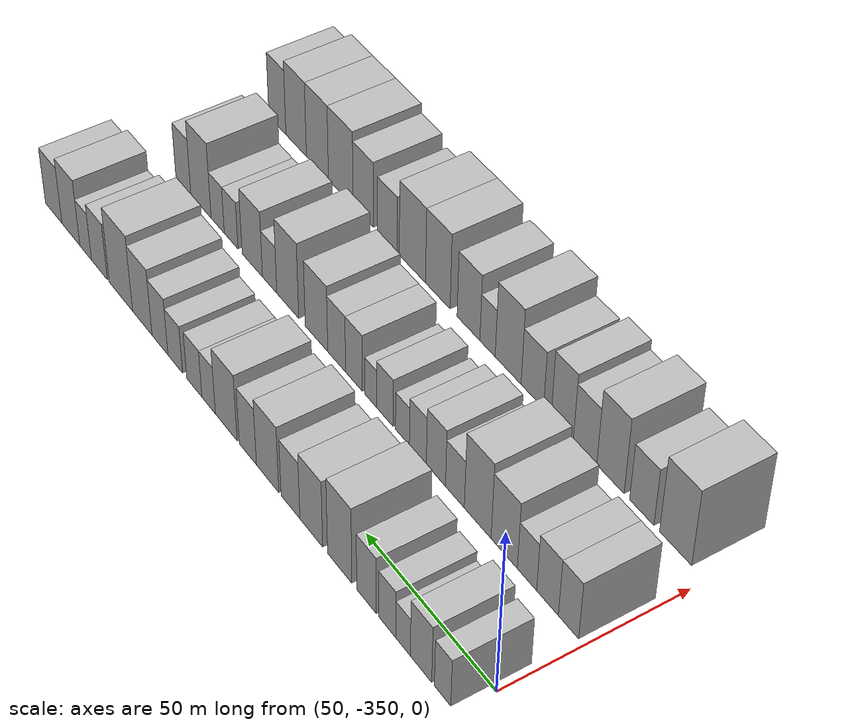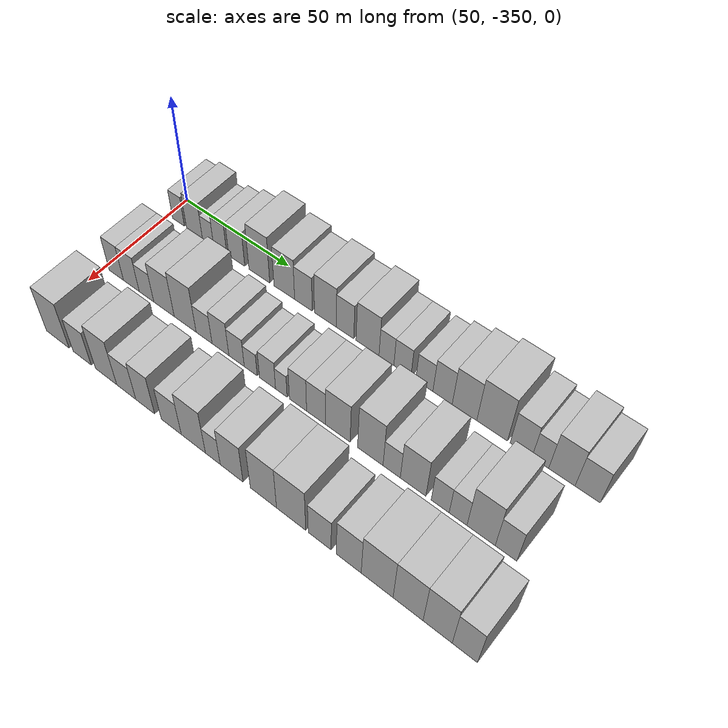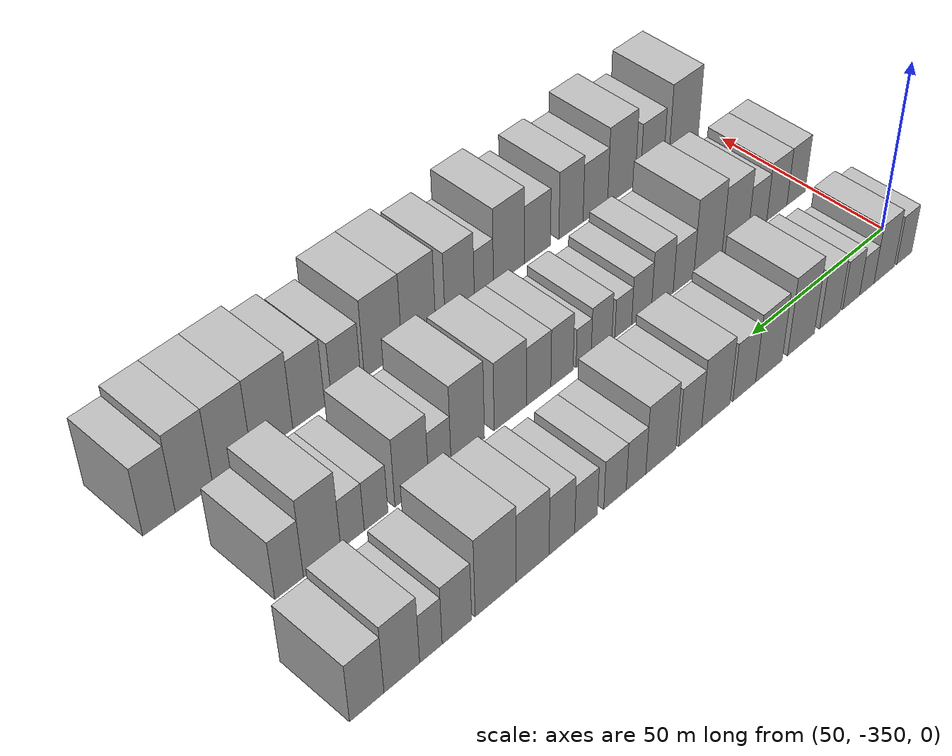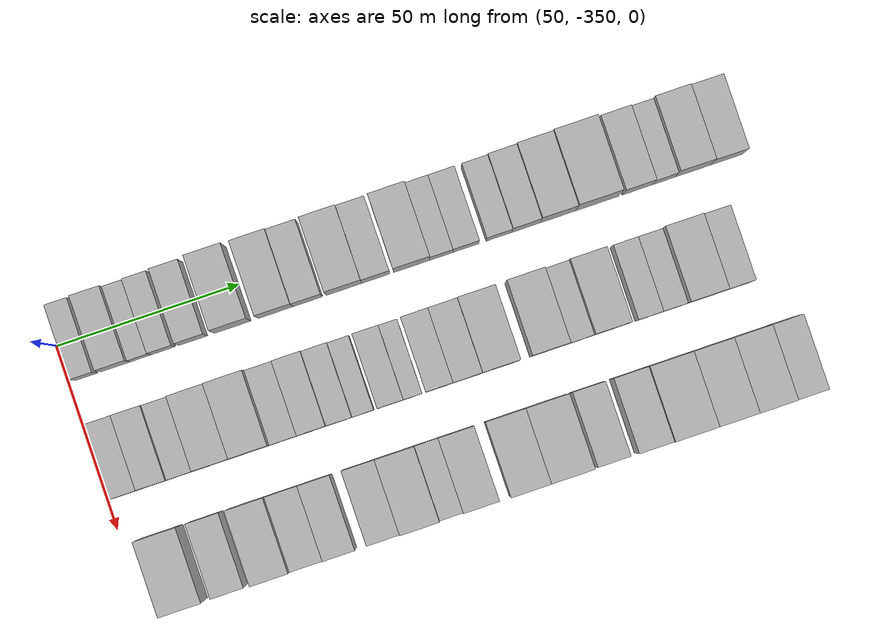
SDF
<sdf version="1.6">
 <world name="default">
  <model name="building_1">
   <static>1</static>
   <pose>50.0000 -344.9657 0 0.000000 0.000000 0.000000</pose>
   <link name="link">
    <pose>0 0 7.50 0 0 0</pose>
    <collision name="collision"><geometry><box><size>20.0000 6.0687 15.0000</size></box></geometry></collision>
    <visual name="visual">
     <cast_shadows>0</cast_shadows>
     <geometry><box><size>20.0000 6.0687 15.0000</size></box></geometry>
     <material>
      <script>
       <uri>model://HANNAS_wall/materials/scripts</uri>
       <uri>model://HANNAS_wall/materials/textures</uri>
       <name>vrc/HANNAS_wall</name>
      </script>
     </material>
    </visual>
   </link>
  </model>
  <model name="building_2">
   <static>1</static>
   <pose>50.0000 -336.9161 0 0.000000 0.000000 0.000000</pose>
   <link name="link">
    <pose>0 0 9.00 0 0 0</pose>
    <collision name="collision"><geometry><box><size>20.0000 8.0305 18.0000</size></box></geometry></collision>
    <visual name="visual">
     <cast_shadows>0</cast_shadows>
     <geometry><box><size>20.0000 8.0305 18.0000</size></box></geometry>
     <material>
      <script>
       <uri>model://HANNAS_wall/materials/scripts</uri>
       <uri>model://HANNAS_wall/materials/textures</uri>
       <name>vrc/HANNAS_wall</name>
      </script>
     </material>
    </visual>
   </link>
  </model>
  <model name="building_3">
   <static>1</static>
   <pose>50.0000 -330.0949 0 0.000000 0.000000 0.000000</pose>
   <link name="link">
    <pose>0 0 6.00 0 0 0</pose>
    <collision name="collision"><geometry><box><size>20.0000 5.6119 12.0000</size></box></geometry></collision>
    <visual name="visual">
     <cast_shadows>0</cast_shadows>
     <geometry><box><size>20.0000 5.6119 12.0000</size></box></geometry>
     <material>
      <script>
       <uri>model://HANNAS_wall/materials/scripts</uri>
       <uri>model://HANNAS_wall/materials/textures</uri>
       <name>vrc/HANNAS_wall</name>
      </script>
     </material>
    </visual>
   </link>
  </model>
  <model name="building_4">
   <static>1</static>
   <pose>50.0000 -324.0263 0 0.000000 0.000000 0.000000</pose>
   <link name="link">
    <pose>0 0 7.50 0 0 0</pose>
    <collision name="collision"><geometry><box><size>20.0000 6.5253 15.0000</size></box></geometry></collision>
    <visual name="visual">
     <cast_shadows>0</cast_shadows>
     <geometry><box><size>20.0000 6.5253 15.0000</size></box></geometry>
     <material>
      <script>
       <uri>model://HANNAS_wall/materials/scripts</uri>
       <uri>model://HANNAS_wall/materials/textures</uri>
       <name>vrc/HANNAS_wall</name>
      </script>
     </material>
    </visual>
   </link>
  </model>
  <model name="building_5">
   <static>1</static>
   <pose>50.0000 -315.8973 0 0.000000 0.000000 0.000000</pose>
   <link name="link">
    <pose>0 0 9.00 0 0 0</pose>
    <collision name="collision"><geometry><box><size>20.0000 7.7328 18.0000</size></box></geometry></collision>
    <visual name="visual">
     <cast_shadows>0</cast_shadows>
     <geometry><box><size>20.0000 7.7328 18.0000</size></box></geometry>
     <material>
      <script>
       <uri>model://HANNAS_wall/materials/scripts</uri>
       <uri>model://HANNAS_wall/materials/textures</uri>
       <name>vrc/HANNAS_wall</name>
      </script>
     </material>
    </visual>
   </link>
  </model>
  <model name="building_6">
   <static>1</static>
   <pose>50.0000 -305.1037 0 0.000000 0.000000 0.000000</pose>
   <link name="link">
    <pose>0 0 12.00 0 0 0</pose>
    <collision name="collision"><geometry><box><size>20.0000 9.8543 24.0000</size></box></geometry></collision>
    <visual name="visual">
     <cast_shadows>0</cast_shadows>
     <geometry><box><size>20.0000 9.8543 24.0000</size></box></geometry>
     <material>
      <script>
       <uri>model://HANNAS_wall/materials/scripts</uri>
       <uri>model://HANNAS_wall/materials/textures</uri>
       <name>vrc/HANNAS_wall</name>
      </script>
     </material>
    </visual>
   </link>
  </model>
  <model name="building_7">
   <static>1</static>
   <pose>50.0000 -293.4159 0 0.000000 0.000000 0.000000</pose>
   <link name="link">
    <pose>0 0 10.50 0 0 0</pose>
    <collision name="collision"><geometry><box><size>20.0000 9.5214 21.0000</size></box></geometry></collision>
    <visual name="visual">
     <cast_shadows>0</cast_shadows>
     <geometry><box><size>20.0000 9.5214 21.0000</size></box></geometry>
     <material>
      <script>
       <uri>model://HANNAS_wall/materials/scripts</uri>
       <uri>model://HANNAS_wall/materials/textures</uri>
       <name>vrc/HANNAS_wall</name>
      </script>
     </material>
    </visual>
   </link>
  </model>
  <model name="building_8">
   <static>1</static>
   <pose>50.0000 -284.6538 0 0.000000 0.000000 0.000000</pose>
   <link name="link">
    <pose>0 0 9.00 0 0 0</pose>
    <collision name="collision"><geometry><box><size>20.0000 8.0027 18.0000</size></box></geometry></collision>
    <visual name="visual">
     <cast_shadows>0</cast_shadows>
     <geometry><box><size>20.0000 8.0027 18.0000</size></box></geometry>
     <material>
      <script>
       <uri>model://HANNAS_wall/materials/scripts</uri>
       <uri>model://HANNAS_wall/materials/textures</uri>
       <name>vrc/HANNAS_wall</name>
      </script>
     </material>
    </visual>
   </link>
  </model>
  <model name="building_9">
   <static>1</static>
   <pose>50.0000 -274.7830 0 0.000000 0.000000 0.000000</pose>
   <link name="link">
    <pose>0 0 10.50 0 0 0</pose>
    <collision name="collision"><geometry><box><size>20.0000 9.7389 21.0000</size></box></geometry></collision>
    <visual name="visual">
     <cast_shadows>0</cast_shadows>
     <geometry><box><size>20.0000 9.7389 21.0000</size></box></geometry>
     <material>
      <script>
       <uri>model://HANNAS_wall/materials/scripts</uri>
       <uri>model://HANNAS_wall/materials/textures</uri>
       <name>vrc/HANNAS_wall</name>
      </script>
     </material>
    </visual>
   </link>
  </model>
  <model name="building_10">
   <static>1</static>
   <pose>50.0000 -266.1051 0 0.000000 0.000000 0.000000</pose>
   <link name="link">
    <pose>0 0 9.00 0 0 0</pose>
    <collision name="collision"><geometry><box><size>20.0000 7.6170 18.0000</size></box></geometry></collision>
    <visual name="visual">
     <cast_shadows>0</cast_shadows>
     <geometry><box><size>20.0000 7.6170 18.0000</size></box></geometry>
     <material>
      <script>
       <uri>model://HANNAS_wall/materials/scripts</uri>
       <uri>model://HANNAS_wall/materials/textures</uri>
       <name>vrc/HANNAS_wall</name>
      </script>
     </material>
    </visual>
   </link>
  </model>
  <model name="building_11">
   <static>1</static>
   <pose>50.0000 -256.3716 0 0.000000 0.000000 0.000000</pose>
   <link name="link">
    <pose>0 0 10.50 0 0 0</pose>
    <collision name="collision"><geometry><box><size>20.0000 9.8499 21.0000</size></box></geometry></collision>
    <visual name="visual">
     <cast_shadows>0</cast_shadows>
     <geometry><box><size>20.0000 9.8499 21.0000</size></box></geometry>
     <material>
      <script>
       <uri>model://HANNAS_wall/materials/scripts</uri>
       <uri>model://HANNAS_wall/materials/textures</uri>
       <name>vrc/HANNAS_wall</name>
      </script>
     </material>
    </visual>
   </link>
  </model>
  <model name="building_12">
   <static>1</static>
   <pose>50.0000 -248.3212 0 0.000000 0.000000 0.000000</pose>
   <link name="link">
    <pose>0 0 7.50 0 0 0</pose>
    <collision name="collision"><geometry><box><size>20.0000 6.2508 15.0000</size></box></geometry></collision>
    <visual name="visual">
     <cast_shadows>0</cast_shadows>
     <geometry><box><size>20.0000 6.2508 15.0000</size></box></geometry>
     <material>
      <script>
       <uri>model://HANNAS_wall/materials/scripts</uri>
       <uri>model://HANNAS_wall/materials/textures</uri>
       <name>vrc/HANNAS_wall</name>
      </script>
     </material>
    </visual>
   </link>
  </model>
  <model name="building_13">
   <static>1</static>
   <pose>50.0000 -241.6532 0 0.000000 0.000000 0.000000</pose>
   <link name="link">
    <pose>0 0 7.50 0 0 0</pose>
    <collision name="collision"><geometry><box><size>20.0000 7.0852 15.0000</size></box></geometry></collision>
    <visual name="visual">
     <cast_shadows>0</cast_shadows>
     <geometry><box><size>20.0000 7.0852 15.0000</size></box></geometry>
     <material>
      <script>
       <uri>model://HANNAS_wall/materials/scripts</uri>
       <uri>model://HANNAS_wall/materials/textures</uri>
       <name>vrc/HANNAS_wall</name>
      </script>
     </material>
    </visual>
   </link>
  </model>
  <model name="building_14">
   <static>1</static>
   <pose>50.0000 -232.6272 0 0.000000 0.000000 0.000000</pose>
   <link name="link">
    <pose>0 0 7.50 0 0 0</pose>
    <collision name="collision"><geometry><box><size>20.0000 6.9666 15.0000</size></box></geometry></collision>
    <visual name="visual">
     <cast_shadows>0</cast_shadows>
     <geometry><box><size>20.0000 6.9666 15.0000</size></box></geometry>
     <material>
      <script>
       <uri>model://HANNAS_wall/materials/scripts</uri>
       <uri>model://HANNAS_wall/materials/textures</uri>
       <name>vrc/HANNAS_wall</name>
      </script>
     </material>
    </visual>
   </link>
  </model>
  <model name="building_15">
   <static>1</static>
   <pose>50.0000 -225.2683 0 0.000000 0.000000 0.000000</pose>
   <link name="link">
    <pose>0 0 9.00 0 0 0</pose>
    <collision name="collision"><geometry><box><size>20.0000 7.7513 18.0000</size></box></geometry></collision>
    <visual name="visual">
     <cast_shadows>0</cast_shadows>
     <geometry><box><size>20.0000 7.7513 18.0000</size></box></geometry>
     <material>
      <script>
       <uri>model://HANNAS_wall/materials/scripts</uri>
       <uri>model://HANNAS_wall/materials/textures</uri>
       <name>vrc/HANNAS_wall</name>
      </script>
     </material>
    </visual>
   </link>
  </model>
  <model name="building_16">
   <static>1</static>
   <pose>50.0000 -216.5674 0 0.000000 0.000000 0.000000</pose>
   <link name="link">
    <pose>0 0 10.50 0 0 0</pose>
    <collision name="collision"><geometry><box><size>20.0000 9.6505 21.0000</size></box></geometry></collision>
    <visual name="visual">
     <cast_shadows>0</cast_shadows>
     <geometry><box><size>20.0000 9.6505 21.0000</size></box></geometry>
     <material>
      <script>
       <uri>model://HANNAS_wall/materials/scripts</uri>
       <uri>model://HANNAS_wall/materials/textures</uri>
       <name>vrc/HANNAS_wall</name>
      </script>
     </material>
    </visual>
   </link>
  </model>
  <model name="building_17">
   <static>1</static>
   <pose>50.0000 -205.8485 0 0.000000 0.000000 0.000000</pose>
   <link name="link">
    <pose>0 0 12.00 0 0 0</pose>
    <collision name="collision"><geometry><box><size>20.0000 11.7873 24.0000</size></box></geometry></collision>
    <visual name="visual">
     <cast_shadows>0</cast_shadows>
     <geometry><box><size>20.0000 11.7873 24.0000</size></box></geometry>
     <material>
      <script>
       <uri>model://HANNAS_wall/materials/scripts</uri>
       <uri>model://HANNAS_wall/materials/textures</uri>
       <name>vrc/HANNAS_wall</name>
      </script>
     </material>
    </visual>
   </link>
  </model>
  <model name="building_18">
   <static>1</static>
   <pose>50.0000 -194.8565 0 0.000000 0.000000 0.000000</pose>
   <link name="link">
    <pose>0 0 9.00 0 0 0</pose>
    <collision name="collision"><geometry><box><size>20.0000 8.1968 18.0000</size></box></geometry></collision>
    <visual name="visual">
     <cast_shadows>0</cast_shadows>
     <geometry><box><size>20.0000 8.1968 18.0000</size></box></geometry>
     <material>
      <script>
       <uri>model://HANNAS_wall/materials/scripts</uri>
       <uri>model://HANNAS_wall/materials/textures</uri>
       <name>vrc/HANNAS_wall</name>
      </script>
     </material>
    </visual>
   </link>
  </model>
  <model name="building_19">
   <static>1</static>
   <pose>50.0000 -187.6945 0 0.000000 0.000000 0.000000</pose>
   <link name="link">
    <pose>0 0 7.50 0 0 0</pose>
    <collision name="collision"><geometry><box><size>20.0000 6.1271 15.0000</size></box></geometry></collision>
    <visual name="visual">
     <cast_shadows>0</cast_shadows>
     <geometry><box><size>20.0000 6.1271 15.0000</size></box></geometry>
     <material>
      <script>
       <uri>model://HANNAS_wall/materials/scripts</uri>
       <uri>model://HANNAS_wall/materials/textures</uri>
       <name>vrc/HANNAS_wall</name>
      </script>
     </material>
    </visual>
   </link>
  </model>
  <model name="building_20">
   <static>1</static>
   <pose>50.0000 -179.8617 0 0.000000 0.000000 0.000000</pose>
   <link name="link">
    <pose>0 0 10.50 0 0 0</pose>
    <collision name="collision"><geometry><box><size>20.0000 9.5386 21.0000</size></box></geometry></collision>
    <visual name="visual">
     <cast_shadows>0</cast_shadows>
     <geometry><box><size>20.0000 9.5386 21.0000</size></box></geometry>
     <material>
      <script>
       <uri>model://HANNAS_wall/materials/scripts</uri>
       <uri>model://HANNAS_wall/materials/textures</uri>
       <name>vrc/HANNAS_wall</name>
      </script>
     </material>
    </visual>
   </link>
  </model>
  <model name="building_21">
   <static>1</static>
   <pose>50.0000 -170.6082 0 0.000000 0.000000 0.000000</pose>
   <link name="link">
    <pose>0 0 9.00 0 0 0</pose>
    <collision name="collision"><geometry><box><size>20.0000 8.9684 18.0000</size></box></geometry></collision>
    <visual name="visual">
     <cast_shadows>0</cast_shadows>
     <geometry><box><size>20.0000 8.9684 18.0000</size></box></geometry>
     <material>
      <script>
       <uri>model://HANNAS_wall/materials/scripts</uri>
       <uri>model://HANNAS_wall/materials/textures</uri>
       <name>vrc/HANNAS_wall</name>
      </script>
     </material>
    </visual>
   </link>
  </model>
  <model name="building_83">
   <static>1</static>
   <pose>82.0000 -344.3608 0 0.000000 0.000000 0.000000</pose>
   <link name="link">
    <pose>0 0 9.00 0 0 0</pose>
    <collision name="collision"><geometry><box><size>20.0000 7.2784 18.0000</size></box></geometry></collision>
    <visual name="visual">
     <cast_shadows>0</cast_shadows>
     <geometry><box><size>20.0000 7.2784 18.0000</size></box></geometry>
     <material>
      <script>
       <uri>model://HANNAS_wall/materials/scripts</uri>
       <uri>model://HANNAS_wall/materials/textures</uri>
       <name>vrc/HANNAS_wall</name>
      </script>
     </material>
    </visual>
   </link>
  </model>
  <model name="building_84">
   <static>1</static>
   <pose>82.0000 -336.7660 0 0.000000 0.000000 0.000000</pose>
   <link name="link">
    <pose>0 0 9.00 0 0 0</pose>
    <collision name="collision"><geometry><box><size>20.0000 7.9110 18.0000</size></box></geometry></collision>
    <visual name="visual">
     <cast_shadows>0</cast_shadows>
     <geometry><box><size>20.0000 7.9110 18.0000</size></box></geometry>
     <material>
      <script>
       <uri>model://HANNAS_wall/materials/scripts</uri>
       <uri>model://HANNAS_wall/materials/textures</uri>
       <name>vrc/HANNAS_wall</name>
      </script>
     </material>
    </visual>
   </link>
  </model>
  <model name="building_85">
   <static>1</static>
   <pose>82.0000 -329.2255 0 0.000000 0.000000 0.000000</pose>
   <link name="link">
    <pose>0 0 7.50 0 0 0</pose>
    <collision name="collision"><geometry><box><size>20.0000 7.1701 15.0000</size></box></geometry></collision>
    <visual name="visual">
     <cast_shadows>0</cast_shadows>
     <geometry><box><size>20.0000 7.1701 15.0000</size></box></geometry>
     <material>
      <script>
       <uri>model://HANNAS_wall/materials/scripts</uri>
       <uri>model://HANNAS_wall/materials/textures</uri>
       <name>vrc/HANNAS_wall</name>
      </script>
     </material>
    </visual>
   </link>
  </model>
  <model name="building_86">
   <static>1</static>
   <pose>82.0000 -320.6686 0 0.000000 0.000000 0.000000</pose>
   <link name="link">
    <pose>0 0 10.50 0 0 0</pose>
    <collision name="collision"><geometry><box><size>20.0000 9.9436 21.0000</size></box></geometry></collision>
    <visual name="visual">
     <cast_shadows>0</cast_shadows>
     <geometry><box><size>20.0000 9.9436 21.0000</size></box></geometry>
     <material>
      <script>
       <uri>model://HANNAS_wall/materials/scripts</uri>
       <uri>model://HANNAS_wall/materials/textures</uri>
       <name>vrc/HANNAS_wall</name>
      </script>
     </material>
    </visual>
   </link>
  </model>
  <model name="building_87">
   <static>1</static>
   <pose>82.0000 -310.5000 0 0.000000 0.000000 0.000000</pose>
   <link name="link">
    <pose>0 0 12.00 0 0 0</pose>
    <collision name="collision"><geometry><box><size>20.0000 10.3937 24.0000</size></box></geometry></collision>
    <visual name="visual">
     <cast_shadows>0</cast_shadows>
     <geometry><box><size>20.0000 10.3937 24.0000</size></box></geometry>
     <material>
      <script>
       <uri>model://HANNAS_wall/materials/scripts</uri>
       <uri>model://HANNAS_wall/materials/textures</uri>
       <name>vrc/HANNAS_wall</name>
      </script>
     </material>
    </visual>
   </link>
  </model>
  <model name="building_88">
   <static>1</static>
   <pose>82.0000 -301.5817 0 0.000000 0.000000 0.000000</pose>
   <link name="link">
    <pose>0 0 7.50 0 0 0</pose>
    <collision name="collision"><geometry><box><size>20.0000 7.4429 15.0000</size></box></geometry></collision>
    <visual name="visual">
     <cast_shadows>0</cast_shadows>
     <geometry><box><size>20.0000 7.4429 15.0000</size></box></geometry>
     <material>
      <script>
       <uri>model://HANNAS_wall/materials/scripts</uri>
       <uri>model://HANNAS_wall/materials/textures</uri>
       <name>vrc/HANNAS_wall</name>
      </script>
     </material>
    </visual>
   </link>
  </model>
  <model name="building_89">
   <static>1</static>
   <pose>82.0000 -294.0032 0 0.000000 0.000000 0.000000</pose>
   <link name="link">
    <pose>0 0 9.00 0 0 0</pose>
    <collision name="collision"><geometry><box><size>20.0000 7.7140 18.0000</size></box></geometry></collision>
    <visual name="visual">
     <cast_shadows>0</cast_shadows>
     <geometry><box><size>20.0000 7.7140 18.0000</size></box></geometry>
     <material>
      <script>
       <uri>model://HANNAS_wall/materials/scripts</uri>
       <uri>model://HANNAS_wall/materials/textures</uri>
       <name>vrc/HANNAS_wall</name>
      </script>
     </material>
    </visual>
   </link>
  </model>
  <model name="building_90">
   <static>1</static>
   <pose>82.0000 -286.6773 0 0.000000 0.000000 0.000000</pose>
   <link name="link">
    <pose>0 0 7.50 0 0 0</pose>
    <collision name="collision"><geometry><box><size>20.0000 6.9378 15.0000</size></box></geometry></collision>
    <visual name="visual">
     <cast_shadows>0</cast_shadows>
     <geometry><box><size>20.0000 6.9378 15.0000</size></box></geometry>
     <material>
      <script>
       <uri>model://HANNAS_wall/materials/scripts</uri>
       <uri>model://HANNAS_wall/materials/textures</uri>
       <name>vrc/HANNAS_wall</name>
      </script>
     </material>
    </visual>
   </link>
  </model>
  <model name="building_91">
   <static>1</static>
   <pose>82.0000 -280.3136 0 0.000000 0.000000 0.000000</pose>
   <link name="link">
    <pose>0 0 6.00 0 0 0</pose>
    <collision name="collision"><geometry><box><size>20.0000 5.7896 12.0000</size></box></geometry></collision>
    <visual name="visual">
     <cast_shadows>0</cast_shadows>
     <geometry><box><size>20.0000 5.7896 12.0000</size></box></geometry>
     <material>
      <script>
       <uri>model://HANNAS_wall/materials/scripts</uri>
       <uri>model://HANNAS_wall/materials/textures</uri>
       <name>vrc/HANNAS_wall</name>
      </script>
     </material>
    </visual>
   </link>
  </model>
  <model name="building_92">
   <static>1</static>
   <pose>82.0000 -272.9134 0 0.000000 0.000000 0.000000</pose>
   <link name="link">
    <pose>0 0 7.50 0 0 0</pose>
    <collision name="collision"><geometry><box><size>20.0000 7.0108 15.0000</size></box></geometry></collision>
    <visual name="visual">
     <cast_shadows>0</cast_shadows>
     <geometry><box><size>20.0000 7.0108 15.0000</size></box></geometry>
     <material>
      <script>
       <uri>model://HANNAS_wall/materials/scripts</uri>
       <uri>model://HANNAS_wall/materials/textures</uri>
       <name>vrc/HANNAS_wall</name>
      </script>
     </material>
    </visual>
   </link>
  </model>
  <model name="building_93">
   <static>1</static>
   <pose>82.0000 -266.8978 0 0.000000 0.000000 0.000000</pose>
   <link name="link">
    <pose>0 0 6.00 0 0 0</pose>
    <collision name="collision"><geometry><box><size>20.0000 5.0204 12.0000</size></box></geometry></collision>
    <visual name="visual">
     <cast_shadows>0</cast_shadows>
     <geometry><box><size>20.0000 5.0204 12.0000</size></box></geometry>
     <material>
      <script>
       <uri>model://HANNAS_wall/materials/scripts</uri>
       <uri>model://HANNAS_wall/materials/textures</uri>
       <name>vrc/HANNAS_wall</name>
      </script>
     </material>
    </visual>
   </link>
  </model>
  <model name="building_94">
   <static>1</static>
   <pose>82.0000 -259.7431 0 0.000000 0.000000 0.000000</pose>
   <link name="link">
    <pose>0 0 9.00 0 0 0</pose>
    <collision name="collision"><geometry><box><size>20.0000 7.2891 18.0000</size></box></geometry></collision>
    <visual name="visual">
     <cast_shadows>0</cast_shadows>
     <geometry><box><size>20.0000 7.2891 18.0000</size></box></geometry>
     <material>
      <script>
       <uri>model://HANNAS_wall/materials/scripts</uri>
       <uri>model://HANNAS_wall/materials/textures</uri>
       <name>vrc/HANNAS_wall</name>
      </script>
     </material>
    </visual>
   </link>
  </model>
  <model name="building_95">
   <static>1</static>
   <pose>82.0000 -252.1448 0 0.000000 0.000000 0.000000</pose>
   <link name="link">
    <pose>0 0 9.00 0 0 0</pose>
    <collision name="collision"><geometry><box><size>20.0000 7.9074 18.0000</size></box></geometry></collision>
    <visual name="visual">
     <cast_shadows>0</cast_shadows>
     <geometry><box><size>20.0000 7.9074 18.0000</size></box></geometry>
     <material>
      <script>
       <uri>model://HANNAS_wall/materials/scripts</uri>
       <uri>model://HANNAS_wall/materials/textures</uri>
       <name>vrc/HANNAS_wall</name>
      </script>
     </material>
    </visual>
   </link>
  </model>
  <model name="building_96">
   <static>1</static>
   <pose>82.0000 -243.1355 0 0.000000 0.000000 0.000000</pose>
   <link name="link">
    <pose>0 0 10.50 0 0 0</pose>
    <collision name="collision"><geometry><box><size>20.0000 10.1112 21.0000</size></box></geometry></collision>
    <visual name="visual">
     <cast_shadows>0</cast_shadows>
     <geometry><box><size>20.0000 10.1112 21.0000</size></box></geometry>
     <material>
      <script>
       <uri>model://HANNAS_wall/materials/scripts</uri>
       <uri>model://HANNAS_wall/materials/textures</uri>
       <name>vrc/HANNAS_wall</name>
      </script>
     </material>
    </visual>
   </link>
  </model>
  <model name="building_97">
   <static>1</static>
   <pose>82.0000 -230.0014 0 0.000000 0.000000 0.000000</pose>
   <link name="link">
    <pose>0 0 12.00 0 0 0</pose>
    <collision name="collision"><geometry><box><size>20.0000 10.1570 24.0000</size></box></geometry></collision>
    <visual name="visual">
     <cast_shadows>0</cast_shadows>
     <geometry><box><size>20.0000 10.1570 24.0000</size></box></geometry>
     <material>
      <script>
       <uri>model://HANNAS_wall/materials/scripts</uri>
       <uri>model://HANNAS_wall/materials/textures</uri>
       <name>vrc/HANNAS_wall</name>
      </script>
     </material>
    </visual>
   </link>
  </model>
  <model name="building_98">
   <static>1</static>
   <pose>82.0000 -221.5478 0 0.000000 0.000000 0.000000</pose>
   <link name="link">
    <pose>0 0 7.50 0 0 0</pose>
    <collision name="collision"><geometry><box><size>20.0000 6.7502 15.0000</size></box></geometry></collision>
    <visual name="visual">
     <cast_shadows>0</cast_shadows>
     <geometry><box><size>20.0000 6.7502 15.0000</size></box></geometry>
     <material>
      <script>
       <uri>model://HANNAS_wall/materials/scripts</uri>
       <uri>model://HANNAS_wall/materials/textures</uri>
       <name>vrc/HANNAS_wall</name>
      </script>
     </material>
    </visual>
   </link>
  </model>
  <model name="building_99">
   <static>1</static>
   <pose>82.0000 -213.2766 0 0.000000 0.000000 0.000000</pose>
   <link name="link">
    <pose>0 0 10.50 0 0 0</pose>
    <collision name="collision"><geometry><box><size>20.0000 9.7922 21.0000</size></box></geometry></collision>
    <visual name="visual">
     <cast_shadows>0</cast_shadows>
     <geometry><box><size>20.0000 9.7922 21.0000</size></box></geometry>
     <material>
      <script>
       <uri>model://HANNAS_wall/materials/scripts</uri>
       <uri>model://HANNAS_wall/materials/textures</uri>
       <name>vrc/HANNAS_wall</name>
      </script>
     </material>
    </visual>
   </link>
  </model>
  <model name="building_100">
   <static>1</static>
   <pose>82.0000 -203.0173 0 0.000000 0.000000 0.000000</pose>
   <link name="link">
    <pose>0 0 7.50 0 0 0</pose>
    <collision name="collision"><geometry><box><size>20.0000 6.7264 15.0000</size></box></geometry></collision>
    <visual name="visual">
     <cast_shadows>0</cast_shadows>
     <geometry><box><size>20.0000 6.7264 15.0000</size></box></geometry>
     <material>
      <script>
       <uri>model://HANNAS_wall/materials/scripts</uri>
       <uri>model://HANNAS_wall/materials/textures</uri>
       <name>vrc/HANNAS_wall</name>
      </script>
     </material>
    </visual>
   </link>
  </model>
  <model name="building_101">
   <static>1</static>
   <pose>82.0000 -196.3740 0 0.000000 0.000000 0.000000</pose>
   <link name="link">
    <pose>0 0 7.50 0 0 0</pose>
    <collision name="collision"><geometry><box><size>20.0000 6.5601 15.0000</size></box></geometry></collision>
    <visual name="visual">
     <cast_shadows>0</cast_shadows>
     <geometry><box><size>20.0000 6.5601 15.0000</size></box></geometry>
     <material>
      <script>
       <uri>model://HANNAS_wall/materials/scripts</uri>
       <uri>model://HANNAS_wall/materials/textures</uri>
       <name>vrc/HANNAS_wall</name>
      </script>
     </material>
    </visual>
   </link>
  </model>
  <model name="building_102">
   <static>1</static>
   <pose>82.0000 -187.9912 0 0.000000 0.000000 0.000000</pose>
   <link name="link">
    <pose>0 0 12.00 0 0 0</pose>
    <collision name="collision"><geometry><box><size>20.0000 10.2055 24.0000</size></box></geometry></collision>
    <visual name="visual">
     <cast_shadows>0</cast_shadows>
     <geometry><box><size>20.0000 10.2055 24.0000</size></box></geometry>
     <material>
      <script>
       <uri>model://HANNAS_wall/materials/scripts</uri>
       <uri>model://HANNAS_wall/materials/textures</uri>
       <name>vrc/HANNAS_wall</name>
      </script>
     </material>
    </visual>
   </link>
  </model>
  <model name="building_103">
   <static>1</static>
   <pose>82.0000 -179.0582 0 0.000000 0.000000 0.000000</pose>
   <link name="link">
    <pose>0 0 9.00 0 0 0</pose>
    <collision name="collision"><geometry><box><size>20.0000 7.6605 18.0000</size></box></geometry></collision>
    <visual name="visual">
     <cast_shadows>0</cast_shadows>
     <geometry><box><size>20.0000 7.6605 18.0000</size></box></geometry>
     <material>
      <script>
       <uri>model://HANNAS_wall/materials/scripts</uri>
       <uri>model://HANNAS_wall/materials/textures</uri>
       <name>vrc/HANNAS_wall</name>
      </script>
     </material>
    </visual>
   </link>
  </model>
  <model name="building_164">
   <static>1</static>
   <pose>114.0000 -339.3222 0 0.000000 0.000000 0.000000</pose>
   <link name="link">
    <pose>0 0 12.00 0 0 0</pose>
    <collision name="collision"><geometry><box><size>20.0000 11.3556 24.0000</size></box></geometry></collision>
    <visual name="visual">
     <cast_shadows>0</cast_shadows>
     <geometry><box><size>20.0000 11.3556 24.0000</size></box></geometry>
     <material>
      <script>
       <uri>model://HANNAS_wall/materials/scripts</uri>
       <uri>model://HANNAS_wall/materials/textures</uri>
       <name>vrc/HANNAS_wall</name>
      </script>
     </material>
    </visual>
   </link>
  </model>
  <model name="building_165">
   <static>1</static>
   <pose>114.0000 -327.2177 0 0.000000 0.000000 0.000000</pose>
   <link name="link">
    <pose>0 0 9.00 0 0 0</pose>
    <collision name="collision"><geometry><box><size>20.0000 8.8535 18.0000</size></box></geometry></collision>
    <visual name="visual">
     <cast_shadows>0</cast_shadows>
     <geometry><box><size>20.0000 8.8535 18.0000</size></box></geometry>
     <material>
      <script>
       <uri>model://HANNAS_wall/materials/scripts</uri>
       <uri>model://HANNAS_wall/materials/textures</uri>
       <name>vrc/HANNAS_wall</name>
      </script>
     </material>
    </visual>
   </link>
  </model>
  <model name="building_166">
   <static>1</static>
   <pose>114.0000 -315.6968 0 0.000000 0.000000 0.000000</pose>
   <link name="link">
    <pose>0 0 12.00 0 0 0</pose>
    <collision name="collision"><geometry><box><size>20.0000 10.1883 24.0000</size></box></geometry></collision>
    <visual name="visual">
     <cast_shadows>0</cast_shadows>
     <geometry><box><size>20.0000 10.1883 24.0000</size></box></geometry>
     <material>
      <script>
       <uri>model://HANNAS_wall/materials/scripts</uri>
       <uri>model://HANNAS_wall/materials/textures</uri>
       <name>vrc/HANNAS_wall</name>
      </script>
     </material>
    </visual>
   </link>
  </model>
  <model name="building_167">
   <static>1</static>
   <pose>114.0000 -306.1398 0 0.000000 0.000000 0.000000</pose>
   <link name="link">
    <pose>0 0 9.00 0 0 0</pose>
    <collision name="collision"><geometry><box><size>20.0000 8.9256 18.0000</size></box></geometry></collision>
    <visual name="visual">
     <cast_shadows>0</cast_shadows>
     <geometry><box><size>20.0000 8.9256 18.0000</size></box></geometry>
     <material>
      <script>
       <uri>model://HANNAS_wall/materials/scripts</uri>
       <uri>model://HANNAS_wall/materials/textures</uri>
       <name>vrc/HANNAS_wall</name>
      </script>
     </material>
    </visual>
   </link>
  </model>
  <model name="building_168">
   <static>1</static>
   <pose>114.0000 -297.3754 0 0.000000 0.000000 0.000000</pose>
   <link name="link">
    <pose>0 0 10.50 0 0 0</pose>
    <collision name="collision"><geometry><box><size>20.0000 8.6032 21.0000</size></box></geometry></collision>
    <visual name="visual">
     <cast_shadows>0</cast_shadows>
     <geometry><box><size>20.0000 8.6032 21.0000</size></box></geometry>
     <material>
      <script>
       <uri>model://HANNAS_wall/materials/scripts</uri>
       <uri>model://HANNAS_wall/materials/textures</uri>
       <name>vrc/HANNAS_wall</name>
      </script>
     </material>
    </visual>
   </link>
  </model>
  <model name="building_169">
   <static>1</static>
   <pose>114.0000 -285.5969 0 0.000000 0.000000 0.000000</pose>
   <link name="link">
    <pose>0 0 9.00 0 0 0</pose>
    <collision name="collision"><geometry><box><size>20.0000 8.9539 18.0000</size></box></geometry></collision>
    <visual name="visual">
     <cast_shadows>0</cast_shadows>
     <geometry><box><size>20.0000 8.9539 18.0000</size></box></geometry>
     <material>
      <script>
       <uri>model://HANNAS_wall/materials/scripts</uri>
       <uri>model://HANNAS_wall/materials/textures</uri>
       <name>vrc/HANNAS_wall</name>
      </script>
     </material>
    </visual>
   </link>
  </model>
  <model name="building_170">
   <static>1</static>
   <pose>114.0000 -275.8503 0 0.000000 0.000000 0.000000</pose>
   <link name="link">
    <pose>0 0 12.00 0 0 0</pose>
    <collision name="collision"><geometry><box><size>20.0000 10.5392 24.0000</size></box></geometry></collision>
    <visual name="visual">
     <cast_shadows>0</cast_shadows>
     <geometry><box><size>20.0000 10.5392 24.0000</size></box></geometry>
     <material>
      <script>
       <uri>model://HANNAS_wall/materials/scripts</uri>
       <uri>model://HANNAS_wall/materials/textures</uri>
       <name>vrc/HANNAS_wall</name>
      </script>
     </material>
    </visual>
   </link>
  </model>
  <model name="building_171">
   <static>1</static>
   <pose>114.0000 -267.4053 0 0.000000 0.000000 0.000000</pose>
   <link name="link">
    <pose>0 0 7.50 0 0 0</pose>
    <collision name="collision"><geometry><box><size>20.0000 6.3509 15.0000</size></box></geometry></collision>
    <visual name="visual">
     <cast_shadows>0</cast_shadows>
     <geometry><box><size>20.0000 6.3509 15.0000</size></box></geometry>
     <material>
      <script>
       <uri>model://HANNAS_wall/materials/scripts</uri>
       <uri>model://HANNAS_wall/materials/textures</uri>
       <name>vrc/HANNAS_wall</name>
      </script>
     </material>
    </visual>
   </link>
  </model>
  <model name="building_172">
   <static>1</static>
   <pose>114.0000 -259.4336 0 0.000000 0.000000 0.000000</pose>
   <link name="link">
    <pose>0 0 10.50 0 0 0</pose>
    <collision name="collision"><geometry><box><size>20.0000 9.5925 21.0000</size></box></geometry></collision>
    <visual name="visual">
     <cast_shadows>0</cast_shadows>
     <geometry><box><size>20.0000 9.5925 21.0000</size></box></geometry>
     <material>
      <script>
       <uri>model://HANNAS_wall/materials/scripts</uri>
       <uri>model://HANNAS_wall/materials/textures</uri>
       <name>vrc/HANNAS_wall</name>
      </script>
     </material>
    </visual>
   </link>
  </model>
  <model name="building_173">
   <static>1</static>
   <pose>114.0000 -246.2912 0 0.000000 0.000000 0.000000</pose>
   <link name="link">
    <pose>0 0 12.00 0 0 0</pose>
    <collision name="collision"><geometry><box><size>20.0000 10.6924 24.0000</size></box></geometry></collision>
    <visual name="visual">
     <cast_shadows>0</cast_shadows>
     <geometry><box><size>20.0000 10.6924 24.0000</size></box></geometry>
     <material>
      <script>
       <uri>model://HANNAS_wall/materials/scripts</uri>
       <uri>model://HANNAS_wall/materials/textures</uri>
       <name>vrc/HANNAS_wall</name>
      </script>
     </material>
    </visual>
   </link>
  </model>
  <model name="building_174">
   <static>1</static>
   <pose>114.0000 -235.1441 0 0.000000 0.000000 0.000000</pose>
   <link name="link">
    <pose>0 0 12.00 0 0 0</pose>
    <collision name="collision"><geometry><box><size>20.0000 11.6017 24.0000</size></box></geometry></collision>
    <visual name="visual">
     <cast_shadows>0</cast_shadows>
     <geometry><box><size>20.0000 11.6017 24.0000</size></box></geometry>
     <material>
      <script>
       <uri>model://HANNAS_wall/materials/scripts</uri>
       <uri>model://HANNAS_wall/materials/textures</uri>
       <name>vrc/HANNAS_wall</name>
      </script>
     </material>
    </visual>
   </link>
  </model>
  <model name="building_175">
   <static>1</static>
   <pose>114.0000 -223.9300 0 0.000000 0.000000 0.000000</pose>
   <link name="link">
    <pose>0 0 9.00 0 0 0</pose>
    <collision name="collision"><geometry><box><size>20.0000 8.8265 18.0000</size></box></geometry></collision>
    <visual name="visual">
     <cast_shadows>0</cast_shadows>
     <geometry><box><size>20.0000 8.8265 18.0000</size></box></geometry>
     <material>
      <script>
       <uri>model://HANNAS_wall/materials/scripts</uri>
       <uri>model://HANNAS_wall/materials/textures</uri>
       <name>vrc/HANNAS_wall</name>
      </script>
     </material>
    </visual>
   </link>
  </model>
  <model name="building_176">
   <static>1</static>
   <pose>114.0000 -212.8440 0 0.000000 0.000000 0.000000</pose>
   <link name="link">
    <pose>0 0 10.50 0 0 0</pose>
    <collision name="collision"><geometry><box><size>20.0000 9.3456 21.0000</size></box></geometry></collision>
    <visual name="visual">
     <cast_shadows>0</cast_shadows>
     <geometry><box><size>20.0000 9.3456 21.0000</size></box></geometry>
     <material>
      <script>
       <uri>model://HANNAS_wall/materials/scripts</uri>
       <uri>model://HANNAS_wall/materials/textures</uri>
       <name>vrc/HANNAS_wall</name>
      </script>
     </material>
    </visual>
   </link>
  </model>
  <model name="building_177">
   <static>1</static>
   <pose>114.0000 -202.3132 0 0.000000 0.000000 0.000000</pose>
   <link name="link">
    <pose>0 0 12.00 0 0 0</pose>
    <collision name="collision"><geometry><box><size>20.0000 11.7160 24.0000</size></box></geometry></collision>
    <visual name="visual">
     <cast_shadows>0</cast_shadows>
     <geometry><box><size>20.0000 11.7160 24.0000</size></box></geometry>
     <material>
      <script>
       <uri>model://HANNAS_wall/materials/scripts</uri>
       <uri>model://HANNAS_wall/materials/textures</uri>
       <name>vrc/HANNAS_wall</name>
      </script>
     </material>
    </visual>
   </link>
  </model>
  <model name="building_178">
   <static>1</static>
   <pose>114.0000 -191.1080 0 0.000000 0.000000 0.000000</pose>
   <link name="link">
    <pose>0 0 12.00 0 0 0</pose>
    <collision name="collision"><geometry><box><size>20.0000 10.6945 24.0000</size></box></geometry></collision>
    <visual name="visual">
     <cast_shadows>0</cast_shadows>
     <geometry><box><size>20.0000 10.6945 24.0000</size></box></geometry>
     <material>
      <script>
       <uri>model://HANNAS_wall/materials/scripts</uri>
       <uri>model://HANNAS_wall/materials/textures</uri>
       <name>vrc/HANNAS_wall</name>
      </script>
     </material>
    </visual>
   </link>
  </model>
  <model name="building_179">
   <static>1</static>
   <pose>114.0000 -180.6865 0 0.000000 0.000000 0.000000</pose>
   <link name="link">
    <pose>0 0 12.00 0 0 0</pose>
    <collision name="collision"><geometry><box><size>20.0000 10.1484 24.0000</size></box></geometry></collision>
    <visual name="visual">
     <cast_shadows>0</cast_shadows>
     <geometry><box><size>20.0000 10.1484 24.0000</size></box></geometry>
     <material>
      <script>
       <uri>model://HANNAS_wall/materials/scripts</uri>
       <uri>model://HANNAS_wall/materials/textures</uri>
       <name>vrc/HANNAS_wall</name>
      </script>
     </material>
    </visual>
   </link>
  </model>
  <model name="building_180">
   <static>1</static>
   <pose>114.0000 -171.3246 0 0.000000 0.000000 0.000000</pose>
   <link name="link">
    <pose>0 0 10.50 0 0 0</pose>
    <collision name="collision"><geometry><box><size>20.0000 8.5755 21.0000</size></box></geometry></collision>
    <visual name="visual">
     <cast_shadows>0</cast_shadows>
     <geometry><box><size>20.0000 8.5755 21.0000</size></box></geometry>
     <material>
      <script>
       <uri>model://HANNAS_wall/materials/scripts</uri>
       <uri>model://HANNAS_wall/materials/textures</uri>
       <name>vrc/HANNAS_wall</name>
      </script>
     </material>
    </visual>
   </link>
  </model>
 </world>
</sdf>
